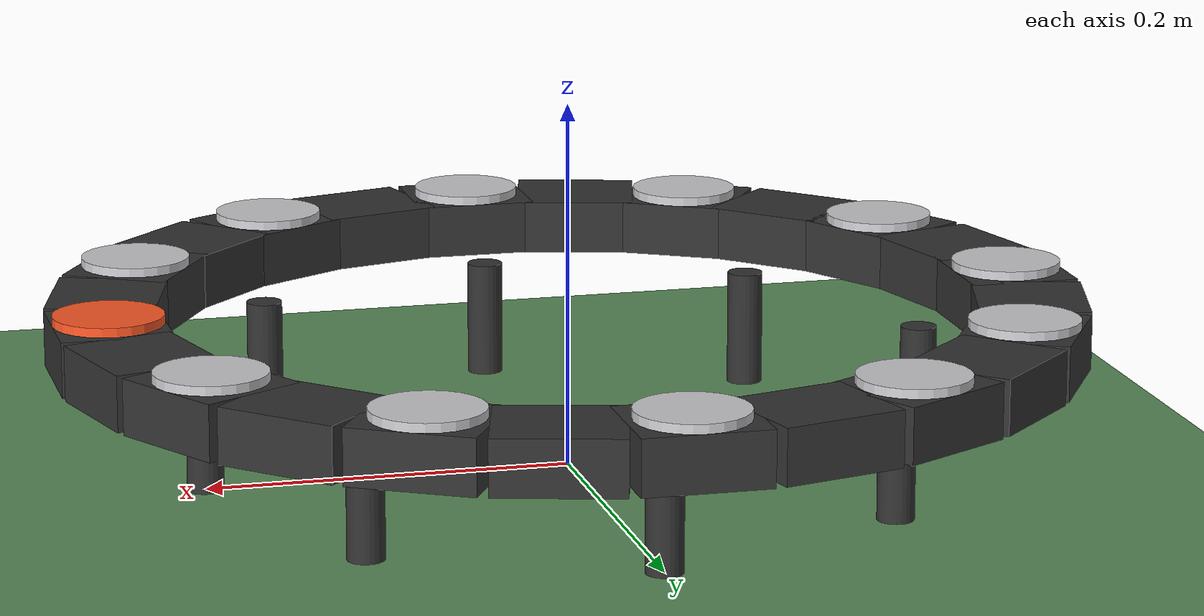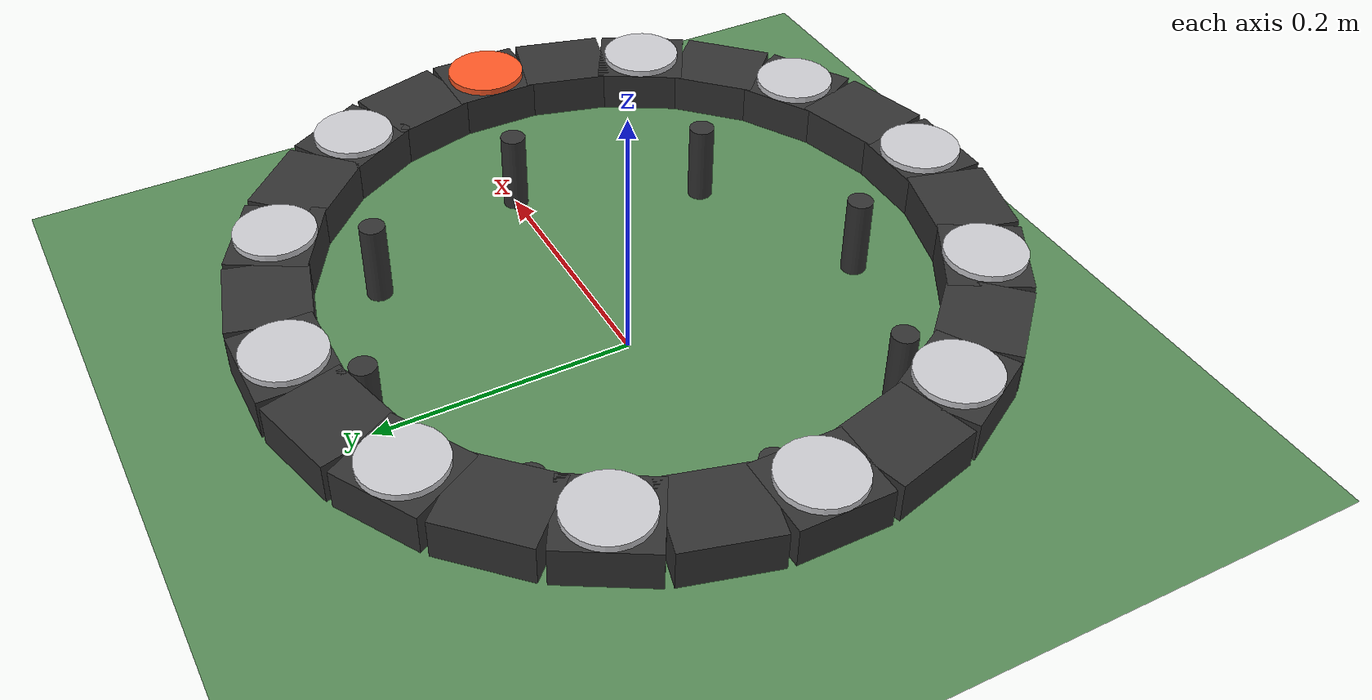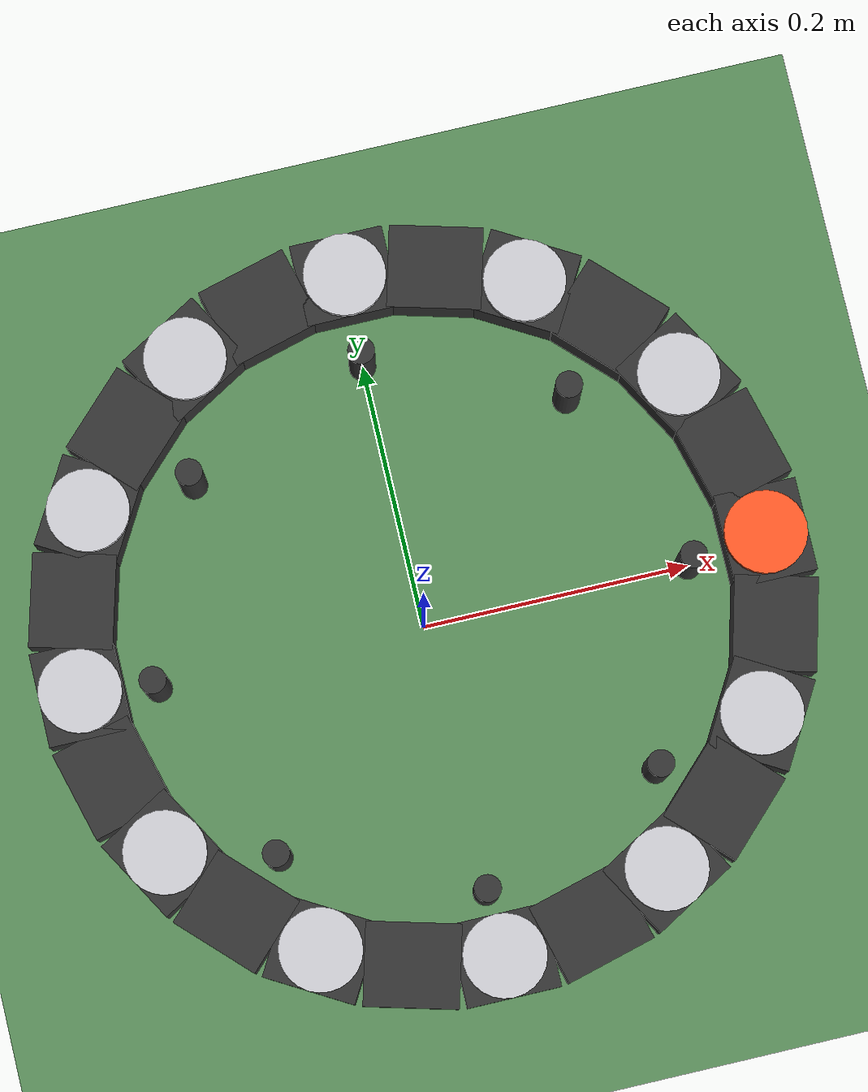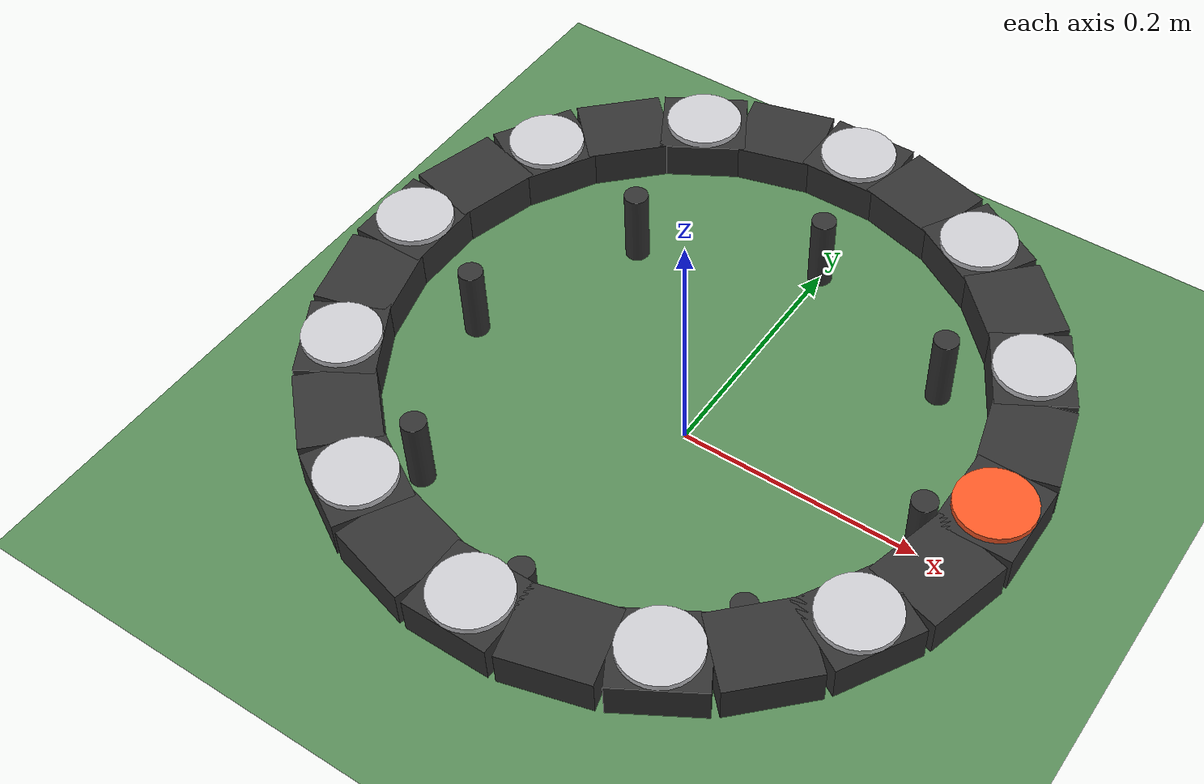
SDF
<sdf version="1.6">
 <world name="quadcopter">
  <physics name="1ms" type="ignored">
   <max_step_size>0.001</max_step_size>
   <real_time_factor>1.0</real_time_factor>
   <real_time_update_rate>500</real_time_update_rate>
  </physics>
  <plugin filename="ignition-gazebo-physics-system" name="gz::sim::systems::Physics"/>
  <plugin filename="ignition-gazebo-scene-broadcaster-system" name="gz::sim::systems::SceneBroadcaster"/>
  <plugin filename="ignition-gazebo-user-commands-system" name="gz::sim::systems::UserCommands"/>
  <scene><background>0.60 0.80 1.00 1</background><ambient>0.50 0.50 0.50 1</ambient></scene>
  <light type="directional" name="sun">
   <pose>0 0 10 0 0 0</pose>
   <diffuse>0.8 0.8 0.8 1</diffuse>
   <specular>0.2 0.2 0.2 1</specular>
   <attenuation>
    <range>1000</range>
    <constant>0.9</constant>
    <linear>0.01</linear>
    <quadratic>0.001</quadratic>
   </attenuation>
   <direction>-0.5 0.1 -0.9</direction>
  </light>
  <model name="ground_plane">
   <static>true</static>
   <link name="link">
    <collision name="collision">
     <geometry><plane><normal>0 0 1</normal><size>20 20</size></plane></geometry>
    </collision>
    <visual name="visual">
     <geometry><plane><normal>0 0 1</normal><size>20 20</size></plane></geometry>
     <material><ambient>0.28 0.48 0.28 1</ambient><diffuse>0.35 0.55 0.35 1</diffuse></material>
    </visual>
   </link>
  </model>
  <include><uri>m2a_x3_support.sdf</uri><pose>0.55 0 0.855 0 0 0</pose></include>
  <include><uri>m2a_ring_fixture.sdf</uri><pose>0 0 0.10 0 0 0</pose></include>
 </world>
</sdf>

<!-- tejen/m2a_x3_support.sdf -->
<sdf version="1.6">
  <model name="m2a_x3_support">
    <link name="support_link">
      <kinematic>true</kinematic>
      <gravity>false</gravity>
      <inertial>
        <mass>1.0</mass>
        <inertia>
          <ixx>0.01</ixx><iyy>0.01</iyy><izz>0.01</izz>
        </inertia>
      </inertial>
    </link>

    <plugin filename="gz-sim-detachable-joint-system" name="gz::sim::systems::DetachableJoint">
      <parent_link>support_link</parent_link>
      <child_model>x3</child_model>
      <child_link>X3/base_link</child_link>
      <detach_topic>/m2a/support/detach</detach_topic>
      <attach_topic>/m2a/support/attach</attach_topic>
      <output_topic>/m2a/support/state</output_topic>
    </plugin>
  </model>
</sdf>

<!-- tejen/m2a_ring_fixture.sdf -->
<sdf version="1.6">
  <model name="payload_model">
    <static>true</static>
    <link name="payload_link">
      <!-- M2A static circular bench fixture. Ring attachment plane is local z=0. -->
      <collision name="ring_segment_0_collision">
        <pose>0.250000000000 0.000000000000 -0.020000000000 0 0 1.570796326795</pose>
        <geometry><box><size>0.068067840828 0.060000000000 0.030000000000</size></box></geometry>
      </collision>
      <visual name="ring_segment_0_visual">
        <pose>0.250000000000 0.000000000000 -0.020000000000 0 0 1.570796326795</pose>
        <geometry><box><size>0.068067840828 0.060000000000 0.030000000000</size></box></geometry>
        <material><ambient>0.12 0.12 0.12 1</ambient><diffuse>0.20 0.20 0.20 1</diffuse></material>
      </visual>
      <collision name="ring_segment_1_collision">
        <pose>0.241481456572 0.064704761276 -0.020000000000 0 0 1.832595714594</pose>
        <geometry><box><size>0.068067840828 0.060000000000 0.030000000000</size></box></geometry>
      </collision>
      <visual name="ring_segment_1_visual">
        <pose>0.241481456572 0.064704761276 -0.020000000000 0 0 1.832595714594</pose>
        <geometry><box><size>0.068067840828 0.060000000000 0.030000000000</size></box></geometry>
        <material><ambient>0.12 0.12 0.12 1</ambient><diffuse>0.20 0.20 0.20 1</diffuse></material>
      </visual>
      <collision name="ring_segment_2_collision">
        <pose>0.216506350946 0.125000000000 -0.020000000000 0 0 2.094395102393</pose>
        <geometry><box><size>0.068067840828 0.060000000000 0.030000000000</size></box></geometry>
      </collision>
      <visual name="ring_segment_2_visual">
        <pose>0.216506350946 0.125000000000 -0.020000000000 0 0 2.094395102393</pose>
        <geometry><box><size>0.068067840828 0.060000000000 0.030000000000</size></box></geometry>
        <material><ambient>0.12 0.12 0.12 1</ambient><diffuse>0.20 0.20 0.20 1</diffuse></material>
      </visual>
      <collision name="ring_segment_3_collision">
        <pose>0.176776695297 0.176776695297 -0.020000000000 0 0 2.356194490192</pose>
        <geometry><box><size>0.068067840828 0.060000000000 0.030000000000</size></box></geometry>
      </collision>
      <visual name="ring_segment_3_visual">
        <pose>0.176776695297 0.176776695297 -0.020000000000 0 0 2.356194490192</pose>
        <geometry><box><size>0.068067840828 0.060000000000 0.030000000000</size></box></geometry>
        <material><ambient>0.12 0.12 0.12 1</ambient><diffuse>0.20 0.20 0.20 1</diffuse></material>
      </visual>
      <collision name="ring_segment_4_collision">
        <pose>0.125000000000 0.216506350946 -0.020000000000 0 0 2.617993877991</pose>
        <geometry><box><size>0.068067840828 0.060000000000 0.030000000000</size></box></geometry>
      </collision>
      <visual name="ring_segment_4_visual">
        <pose>0.125000000000 0.216506350946 -0.020000000000 0 0 2.617993877991</pose>
        <geometry><box><size>0.068067840828 0.060000000000 0.030000000000</size></box></geometry>
        <material><ambient>0.12 0.12 0.12 1</ambient><diffuse>0.20 0.20 0.20 1</diffuse></material>
      </visual>
      <collision name="ring_segment_5_collision">
        <pose>0.064704761276 0.241481456572 -0.020000000000 0 0 2.879793265791</pose>
        <geometry><box><size>0.068067840828 0.060000000000 0.030000000000</size></box></geometry>
      </collision>
      <visual name="ring_segment_5_visual">
        <pose>0.064704761276 0.241481456572 -0.020000000000 0 0 2.879793265791</pose>
        <geometry><box><size>0.068067840828 0.060000000000 0.030000000000</size></box></geometry>
        <material><ambient>0.12 0.12 0.12 1</ambient><diffuse>0.20 0.20 0.20 1</diffuse></material>
      </visual>
      <collision name="ring_segment_6_collision">
        <pose>0.000000000000 0.250000000000 -0.020000000000 0 0 3.141592653590</pose>
        <geometry><box><size>0.068067840828 0.060000000000 0.030000000000</size></box></geometry>
      </collision>
      <visual name="ring_segment_6_visual">
        <pose>0.000000000000 0.250000000000 -0.020000000000 0 0 3.141592653590</pose>
        <geometry><box><size>0.068067840828 0.060000000000 0.030000000000</size></box></geometry>
        <material><ambient>0.12 0.12 0.12 1</ambient><diffuse>0.20 0.20 0.20 1</diffuse></material>
      </visual>
      <collision name="ring_segment_7_collision">
        <pose>-0.064704761276 0.241481456572 -0.020000000000 0 0 3.403392041389</pose>
        <geometry><box><size>0.068067840828 0.060000000000 0.030000000000</size></box></geometry>
      </collision>
      <visual name="ring_segment_7_visual">
        <pose>-0.064704761276 0.241481456572 -0.020000000000 0 0 3.403392041389</pose>
        <geometry><box><size>0.068067840828 0.060000000000 0.030000000000</size></box></geometry>
        <material><ambient>0.12 0.12 0.12 1</ambient><diffuse>0.20 0.20 0.20 1</diffuse></material>
      </visual>
      <collision name="ring_segment_8_collision">
        <pose>-0.125000000000 0.216506350946 -0.020000000000 0 0 3.665191429188</pose>
        <geometry><box><size>0.068067840828 0.060000000000 0.030000000000</size></box></geometry>
      </collision>
      <visual name="ring_segment_8_visual">
        <pose>-0.125000000000 0.216506350946 -0.020000000000 0 0 3.665191429188</pose>
        <geometry><box><size>0.068067840828 0.060000000000 0.030000000000</size></box></geometry>
        <material><ambient>0.12 0.12 0.12 1</ambient><diffuse>0.20 0.20 0.20 1</diffuse></material>
      </visual>
      <collision name="ring_segment_9_collision">
        <pose>-0.176776695297 0.176776695297 -0.020000000000 0 0 3.926990816987</pose>
        <geometry><box><size>0.068067840828 0.060000000000 0.030000000000</size></box></geometry>
      </collision>
      <visual name="ring_segment_9_visual">
        <pose>-0.176776695297 0.176776695297 -0.020000000000 0 0 3.926990816987</pose>
        <geometry><box><size>0.068067840828 0.060000000000 0.030000000000</size></box></geometry>
        <material><ambient>0.12 0.12 0.12 1</ambient><diffuse>0.20 0.20 0.20 1</diffuse></material>
      </visual>
      <collision name="ring_segment_10_collision">
        <pose>-0.216506350946 0.125000000000 -0.020000000000 0 0 4.188790204786</pose>
        <geometry><box><size>0.068067840828 0.060000000000 0.030000000000</size></box></geometry>
      </collision>
      <visual name="ring_segment_10_visual">
        <pose>-0.216506350946 0.125000000000 -0.020000000000 0 0 4.188790204786</pose>
        <geometry><box><size>0.068067840828 0.060000000000 0.030000000000</size></box></geometry>
        <material><ambient>0.12 0.12 0.12 1</ambient><diffuse>0.20 0.20 0.20 1</diffuse></material>
      </visual>
      <collision name="ring_segment_11_collision">
        <pose>-0.241481456572 0.064704761276 -0.020000000000 0 0 4.450589592586</pose>
        <geometry><box><size>0.068067840828 0.060000000000 0.030000000000</size></box></geometry>
      </collision>
      <visual name="ring_segment_11_visual">
        <pose>-0.241481456572 0.064704761276 -0.020000000000 0 0 4.450589592586</pose>
        <geometry><box><size>0.068067840828 0.060000000000 0.030000000000</size></box></geometry>
        <material><ambient>0.12 0.12 0.12 1</ambient><diffuse>0.20 0.20 0.20 1</diffuse></material>
      </visual>
      <collision name="ring_segment_12_collision">
        <pose>-0.250000000000 0.000000000000 -0.020000000000 0 0 4.712388980385</pose>
        <geometry><box><size>0.068067840828 0.060000000000 0.030000000000</size></box></geometry>
      </collision>
      <visual name="ring_segment_12_visual">
        <pose>-0.250000000000 0.000000000000 -0.020000000000 0 0 4.712388980385</pose>
        <geometry><box><size>0.068067840828 0.060000000000 0.030000000000</size></box></geometry>
        <material><ambient>0.12 0.12 0.12 1</ambient><diffuse>0.20 0.20 0.20 1</diffuse></material>
      </visual>
      <collision name="ring_segment_13_collision">
        <pose>-0.241481456572 -0.064704761276 -0.020000000000 0 0 4.974188368184</pose>
        <geometry><box><size>0.068067840828 0.060000000000 0.030000000000</size></box></geometry>
      </collision>
      <visual name="ring_segment_13_visual">
        <pose>-0.241481456572 -0.064704761276 -0.020000000000 0 0 4.974188368184</pose>
        <geometry><box><size>0.068067840828 0.060000000000 0.030000000000</size></box></geometry>
        <material><ambient>0.12 0.12 0.12 1</ambient><diffuse>0.20 0.20 0.20 1</diffuse></material>
      </visual>
      <collision name="ring_segment_14_collision">
        <pose>-0.216506350946 -0.125000000000 -0.020000000000 0 0 5.235987755983</pose>
        <geometry><box><size>0.068067840828 0.060000000000 0.030000000000</size></box></geometry>
      </collision>
      <visual name="ring_segment_14_visual">
        <pose>-0.216506350946 -0.125000000000 -0.020000000000 0 0 5.235987755983</pose>
        <geometry><box><size>0.068067840828 0.060000000000 0.030000000000</size></box></geometry>
        <material><ambient>0.12 0.12 0.12 1</ambient><diffuse>0.20 0.20 0.20 1</diffuse></material>
      </visual>
      <collision name="ring_segment_15_collision">
        <pose>-0.176776695297 -0.176776695297 -0.020000000000 0 0 5.497787143782</pose>
        <geometry><box><size>0.068067840828 0.060000000000 0.030000000000</size></box></geometry>
      </collision>
      <visual name="ring_segment_15_visual">
        <pose>-0.176776695297 -0.176776695297 -0.020000000000 0 0 5.497787143782</pose>
        <geometry><box><size>0.068067840828 0.060000000000 0.030000000000</size></box></geometry>
        <material><ambient>0.12 0.12 0.12 1</ambient><diffuse>0.20 0.20 0.20 1</diffuse></material>
      </visual>
      <collision name="ring_segment_16_collision">
        <pose>-0.125000000000 -0.216506350946 -0.020000000000 0 0 5.759586531581</pose>
        <geometry><box><size>0.068067840828 0.060000000000 0.030000000000</size></box></geometry>
      </collision>
      <visual name="ring_segment_16_visual">
        <pose>-0.125000000000 -0.216506350946 -0.020000000000 0 0 5.759586531581</pose>
        <geometry><box><size>0.068067840828 0.060000000000 0.030000000000</size></box></geometry>
        <material><ambient>0.12 0.12 0.12 1</ambient><diffuse>0.20 0.20 0.20 1</diffuse></material>
      </visual>
      <collision name="ring_segment_17_collision">
        <pose>-0.064704761276 -0.241481456572 -0.020000000000 0 0 6.021385919380</pose>
        <geometry><box><size>0.068067840828 0.060000000000 0.030000000000</size></box></geometry>
      </collision>
      <visual name="ring_segment_17_visual">
        <pose>-0.064704761276 -0.241481456572 -0.020000000000 0 0 6.021385919380</pose>
        <geometry><box><size>0.068067840828 0.060000000000 0.030000000000</size></box></geometry>
        <material><ambient>0.12 0.12 0.12 1</ambient><diffuse>0.20 0.20 0.20 1</diffuse></material>
      </visual>
      <collision name="ring_segment_18_collision">
        <pose>-0.000000000000 -0.250000000000 -0.020000000000 0 0 6.283185307180</pose>
        <geometry><box><size>0.068067840828 0.060000000000 0.030000000000</size></box></geometry>
      </collision>
      <visual name="ring_segment_18_visual">
        <pose>-0.000000000000 -0.250000000000 -0.020000000000 0 0 6.283185307180</pose>
        <geometry><box><size>0.068067840828 0.060000000000 0.030000000000</size></box></geometry>
        <material><ambient>0.12 0.12 0.12 1</ambient><diffuse>0.20 0.20 0.20 1</diffuse></material>
      </visual>
      <collision name="ring_segment_19_collision">
        <pose>0.064704761276 -0.241481456572 -0.020000000000 0 0 6.544984694979</pose>
        <geometry><box><size>0.068067840828 0.060000000000 0.030000000000</size></box></geometry>
      </collision>
      <visual name="ring_segment_19_visual">
        <pose>0.064704761276 -0.241481456572 -0.020000000000 0 0 6.544984694979</pose>
        <geometry><box><size>0.068067840828 0.060000000000 0.030000000000</size></box></geometry>
        <material><ambient>0.12 0.12 0.12 1</ambient><diffuse>0.20 0.20 0.20 1</diffuse></material>
      </visual>
      <collision name="ring_segment_20_collision">
        <pose>0.125000000000 -0.216506350946 -0.020000000000 0 0 6.806784082778</pose>
        <geometry><box><size>0.068067840828 0.060000000000 0.030000000000</size></box></geometry>
      </collision>
      <visual name="ring_segment_20_visual">
        <pose>0.125000000000 -0.216506350946 -0.020000000000 0 0 6.806784082778</pose>
        <geometry><box><size>0.068067840828 0.060000000000 0.030000000000</size></box></geometry>
        <material><ambient>0.12 0.12 0.12 1</ambient><diffuse>0.20 0.20 0.20 1</diffuse></material>
      </visual>
      <collision name="ring_segment_21_collision">
        <pose>0.176776695297 -0.176776695297 -0.020000000000 0 0 7.068583470577</pose>
        <geometry><box><size>0.068067840828 0.060000000000 0.030000000000</size></box></geometry>
      </collision>
      <visual name="ring_segment_21_visual">
        <pose>0.176776695297 -0.176776695297 -0.020000000000 0 0 7.068583470577</pose>
        <geometry><box><size>0.068067840828 0.060000000000 0.030000000000</size></box></geometry>
        <material><ambient>0.12 0.12 0.12 1</ambient><diffuse>0.20 0.20 0.20 1</diffuse></material>
      </visual>
      <collision name="ring_segment_22_collision">
        <pose>0.216506350946 -0.125000000000 -0.020000000000 0 0 7.330382858376</pose>
        <geometry><box><size>0.068067840828 0.060000000000 0.030000000000</size></box></geometry>
      </collision>
      <visual name="ring_segment_22_visual">
        <pose>0.216506350946 -0.125000000000 -0.020000000000 0 0 7.330382858376</pose>
        <geometry><box><size>0.068067840828 0.060000000000 0.030000000000</size></box></geometry>
        <material><ambient>0.12 0.12 0.12 1</ambient><diffuse>0.20 0.20 0.20 1</diffuse></material>
      </visual>
      <collision name="ring_segment_23_collision">
        <pose>0.241481456572 -0.064704761276 -0.020000000000 0 0 7.592182246175</pose>
        <geometry><box><size>0.068067840828 0.060000000000 0.030000000000</size></box></geometry>
      </collision>
      <visual name="ring_segment_23_visual">
        <pose>0.241481456572 -0.064704761276 -0.020000000000 0 0 7.592182246175</pose>
        <geometry><box><size>0.068067840828 0.060000000000 0.030000000000</size></box></geometry>
        <material><ambient>0.12 0.12 0.12 1</ambient><diffuse>0.20 0.20 0.20 1</diffuse></material>
      </visual>
      <collision name="plate_0_collision">
        <pose>0.250000000000 0.000000000000 -0.002500000000 0 0 0.000000000000</pose>
        <geometry><cylinder><radius>0.030</radius><length>0.005</length></cylinder></geometry>
      </collision>
      <visual name="plate_0_visual">
        <pose>0.250000000000 0.000000000000 -0.002500000000 0 0 0.000000000000</pose>
        <geometry><cylinder><radius>0.030</radius><length>0.005</length></cylinder></geometry>
        <material><ambient>0.90 0.25 0.10 1</ambient><diffuse>1.00 0.35 0.15 1</diffuse></material>
      </visual>
      <collision name="plate_1_collision">
        <pose>0.216506350946 0.125000000000 -0.002500000000 0 0 0.523598775598</pose>
        <geometry><cylinder><radius>0.030</radius><length>0.005</length></cylinder></geometry>
      </collision>
      <visual name="plate_1_visual">
        <pose>0.216506350946 0.125000000000 -0.002500000000 0 0 0.523598775598</pose>
        <geometry><cylinder><radius>0.030</radius><length>0.005</length></cylinder></geometry>
        <material><ambient>0.65 0.65 0.68 1</ambient><diffuse>0.80 0.80 0.82 1</diffuse></material>
      </visual>
      <collision name="plate_2_collision">
        <pose>0.125000000000 0.216506350946 -0.002500000000 0 0 1.047197551197</pose>
        <geometry><cylinder><radius>0.030</radius><length>0.005</length></cylinder></geometry>
      </collision>
      <visual name="plate_2_visual">
        <pose>0.125000000000 0.216506350946 -0.002500000000 0 0 1.047197551197</pose>
        <geometry><cylinder><radius>0.030</radius><length>0.005</length></cylinder></geometry>
        <material><ambient>0.65 0.65 0.68 1</ambient><diffuse>0.80 0.80 0.82 1</diffuse></material>
      </visual>
      <collision name="plate_3_collision">
        <pose>0.000000000000 0.250000000000 -0.002500000000 0 0 1.570796326795</pose>
        <geometry><cylinder><radius>0.030</radius><length>0.005</length></cylinder></geometry>
      </collision>
      <visual name="plate_3_visual">
        <pose>0.000000000000 0.250000000000 -0.002500000000 0 0 1.570796326795</pose>
        <geometry><cylinder><radius>0.030</radius><length>0.005</length></cylinder></geometry>
        <material><ambient>0.65 0.65 0.68 1</ambient><diffuse>0.80 0.80 0.82 1</diffuse></material>
      </visual>
      <collision name="plate_4_collision">
        <pose>-0.125000000000 0.216506350946 -0.002500000000 0 0 2.094395102393</pose>
        <geometry><cylinder><radius>0.030</radius><length>0.005</length></cylinder></geometry>
      </collision>
      <visual name="plate_4_visual">
        <pose>-0.125000000000 0.216506350946 -0.002500000000 0 0 2.094395102393</pose>
        <geometry><cylinder><radius>0.030</radius><length>0.005</length></cylinder></geometry>
        <material><ambient>0.65 0.65 0.68 1</ambient><diffuse>0.80 0.80 0.82 1</diffuse></material>
      </visual>
      <collision name="plate_5_collision">
        <pose>-0.216506350946 0.125000000000 -0.002500000000 0 0 2.617993877991</pose>
        <geometry><cylinder><radius>0.030</radius><length>0.005</length></cylinder></geometry>
      </collision>
      <visual name="plate_5_visual">
        <pose>-0.216506350946 0.125000000000 -0.002500000000 0 0 2.617993877991</pose>
        <geometry><cylinder><radius>0.030</radius><length>0.005</length></cylinder></geometry>
        <material><ambient>0.65 0.65 0.68 1</ambient><diffuse>0.80 0.80 0.82 1</diffuse></material>
      </visual>
      <collision name="plate_6_collision">
        <pose>-0.250000000000 0.000000000000 -0.002500000000 0 0 3.141592653590</pose>
        <geometry><cylinder><radius>0.030</radius><length>0.005</length></cylinder></geometry>
      </collision>
      <visual name="plate_6_visual">
        <pose>-0.250000000000 0.000000000000 -0.002500000000 0 0 3.141592653590</pose>
        <geometry><cylinder><radius>0.030</radius><length>0.005</length></cylinder></geometry>
        <material><ambient>0.65 0.65 0.68 1</ambient><diffuse>0.80 0.80 0.82 1</diffuse></material>
      </visual>
      <collision name="plate_7_collision">
        <pose>-0.216506350946 -0.125000000000 -0.002500000000 0 0 3.665191429188</pose>
        <geometry><cylinder><radius>0.030</radius><length>0.005</length></cylinder></geometry>
      </collision>
      <visual name="plate_7_visual">
        <pose>-0.216506350946 -0.125000000000 -0.002500000000 0 0 3.665191429188</pose>
        <geometry><cylinder><radius>0.030</radius><length>0.005</length></cylinder></geometry>
        <material><ambient>0.65 0.65 0.68 1</ambient><diffuse>0.80 0.80 0.82 1</diffuse></material>
      </visual>
      <collision name="plate_8_collision">
        <pose>-0.125000000000 -0.216506350946 -0.002500000000 0 0 4.188790204786</pose>
        <geometry><cylinder><radius>0.030</radius><length>0.005</length></cylinder></geometry>
      </collision>
      <visual name="plate_8_visual">
        <pose>-0.125000000000 -0.216506350946 -0.002500000000 0 0 4.188790204786</pose>
        <geometry><cylinder><radius>0.030</radius><length>0.005</length></cylinder></geometry>
        <material><ambient>0.65 0.65 0.68 1</ambient><diffuse>0.80 0.80 0.82 1</diffuse></material>
      </visual>
      <collision name="plate_9_collision">
        <pose>-0.000000000000 -0.250000000000 -0.002500000000 0 0 4.712388980385</pose>
        <geometry><cylinder><radius>0.030</radius><length>0.005</length></cylinder></geometry>
      </collision>
      <visual name="plate_9_visual">
        <pose>-0.000000000000 -0.250000000000 -0.002500000000 0 0 4.712388980385</pose>
        <geometry><cylinder><radius>0.030</radius><length>0.005</length></cylinder></geometry>
        <material><ambient>0.65 0.65 0.68 1</ambient><diffuse>0.80 0.80 0.82 1</diffuse></material>
      </visual>
      <collision name="plate_10_collision">
        <pose>0.125000000000 -0.216506350946 -0.002500000000 0 0 5.235987755983</pose>
        <geometry><cylinder><radius>0.030</radius><length>0.005</length></cylinder></geometry>
      </collision>
      <visual name="plate_10_visual">
        <pose>0.125000000000 -0.216506350946 -0.002500000000 0 0 5.235987755983</pose>
        <geometry><cylinder><radius>0.030</radius><length>0.005</length></cylinder></geometry>
        <material><ambient>0.65 0.65 0.68 1</ambient><diffuse>0.80 0.80 0.82 1</diffuse></material>
      </visual>
      <collision name="plate_11_collision">
        <pose>0.216506350946 -0.125000000000 -0.002500000000 0 0 5.759586531581</pose>
        <geometry><cylinder><radius>0.030</radius><length>0.005</length></cylinder></geometry>
      </collision>
      <visual name="plate_11_visual">
        <pose>0.216506350946 -0.125000000000 -0.002500000000 0 0 5.759586531581</pose>
        <geometry><cylinder><radius>0.030</radius><length>0.005</length></cylinder></geometry>
        <material><ambient>0.65 0.65 0.68 1</ambient><diffuse>0.80 0.80 0.82 1</diffuse></material>
      </visual>
      <collision name="ground_leg_0_collision">
        <pose>0.200000000000 0.000000000000 -0.067500000000 0 0 0</pose>
        <geometry><cylinder><radius>0.010</radius><length>0.065</length></cylinder></geometry>
      </collision>
      <visual name="ground_leg_0_visual">
        <pose>0.200000000000 0.000000000000 -0.067500000000 0 0 0</pose>
        <geometry><cylinder><radius>0.010</radius><length>0.065</length></cylinder></geometry>
        <material><ambient>0.12 0.12 0.12 1</ambient><diffuse>0.20 0.20 0.20 1</diffuse></material>
      </visual>
      <collision name="ground_leg_1_collision">
        <pose>0.141421356237 0.141421356237 -0.067500000000 0 0 0</pose>
        <geometry><cylinder><radius>0.010</radius><length>0.065</length></cylinder></geometry>
      </collision>
      <visual name="ground_leg_1_visual">
        <pose>0.141421356237 0.141421356237 -0.067500000000 0 0 0</pose>
        <geometry><cylinder><radius>0.010</radius><length>0.065</length></cylinder></geometry>
        <material><ambient>0.12 0.12 0.12 1</ambient><diffuse>0.20 0.20 0.20 1</diffuse></material>
      </visual>
      <collision name="ground_leg_2_collision">
        <pose>0.000000000000 0.200000000000 -0.067500000000 0 0 0</pose>
        <geometry><cylinder><radius>0.010</radius><length>0.065</length></cylinder></geometry>
      </collision>
      <visual name="ground_leg_2_visual">
        <pose>0.000000000000 0.200000000000 -0.067500000000 0 0 0</pose>
        <geometry><cylinder><radius>0.010</radius><length>0.065</length></cylinder></geometry>
        <material><ambient>0.12 0.12 0.12 1</ambient><diffuse>0.20 0.20 0.20 1</diffuse></material>
      </visual>
      <collision name="ground_leg_3_collision">
        <pose>-0.141421356237 0.141421356237 -0.067500000000 0 0 0</pose>
        <geometry><cylinder><radius>0.010</radius><length>0.065</length></cylinder></geometry>
      </collision>
      <visual name="ground_leg_3_visual">
        <pose>-0.141421356237 0.141421356237 -0.067500000000 0 0 0</pose>
        <geometry><cylinder><radius>0.010</radius><length>0.065</length></cylinder></geometry>
        <material><ambient>0.12 0.12 0.12 1</ambient><diffuse>0.20 0.20 0.20 1</diffuse></material>
      </visual>
      <collision name="ground_leg_4_collision">
        <pose>-0.200000000000 0.000000000000 -0.067500000000 0 0 0</pose>
        <geometry><cylinder><radius>0.010</radius><length>0.065</length></cylinder></geometry>
      </collision>
      <visual name="ground_leg_4_visual">
        <pose>-0.200000000000 0.000000000000 -0.067500000000 0 0 0</pose>
        <geometry><cylinder><radius>0.010</radius><length>0.065</length></cylinder></geometry>
        <material><ambient>0.12 0.12 0.12 1</ambient><diffuse>0.20 0.20 0.20 1</diffuse></material>
      </visual>
      <collision name="ground_leg_5_collision">
        <pose>-0.141421356237 -0.141421356237 -0.067500000000 0 0 0</pose>
        <geometry><cylinder><radius>0.010</radius><length>0.065</length></cylinder></geometry>
      </collision>
      <visual name="ground_leg_5_visual">
        <pose>-0.141421356237 -0.141421356237 -0.067500000000 0 0 0</pose>
        <geometry><cylinder><radius>0.010</radius><length>0.065</length></cylinder></geometry>
        <material><ambient>0.12 0.12 0.12 1</ambient><diffuse>0.20 0.20 0.20 1</diffuse></material>
      </visual>
      <collision name="ground_leg_6_collision">
        <pose>-0.000000000000 -0.200000000000 -0.067500000000 0 0 0</pose>
        <geometry><cylinder><radius>0.010</radius><length>0.065</length></cylinder></geometry>
      </collision>
      <visual name="ground_leg_6_visual">
        <pose>-0.000000000000 -0.200000000000 -0.067500000000 0 0 0</pose>
        <geometry><cylinder><radius>0.010</radius><length>0.065</length></cylinder></geometry>
        <material><ambient>0.12 0.12 0.12 1</ambient><diffuse>0.20 0.20 0.20 1</diffuse></material>
      </visual>
      <collision name="ground_leg_7_collision">
        <pose>0.141421356237 -0.141421356237 -0.067500000000 0 0 0</pose>
        <geometry><cylinder><radius>0.010</radius><length>0.065</length></cylinder></geometry>
      </collision>
      <visual name="ground_leg_7_visual">
        <pose>0.141421356237 -0.141421356237 -0.067500000000 0 0 0</pose>
        <geometry><cylinder><radius>0.010</radius><length>0.065</length></cylinder></geometry>
        <material><ambient>0.12 0.12 0.12 1</ambient><diffuse>0.20 0.20 0.20 1</diffuse></material>
      </visual>
    </link>
  </model>
</sdf>
